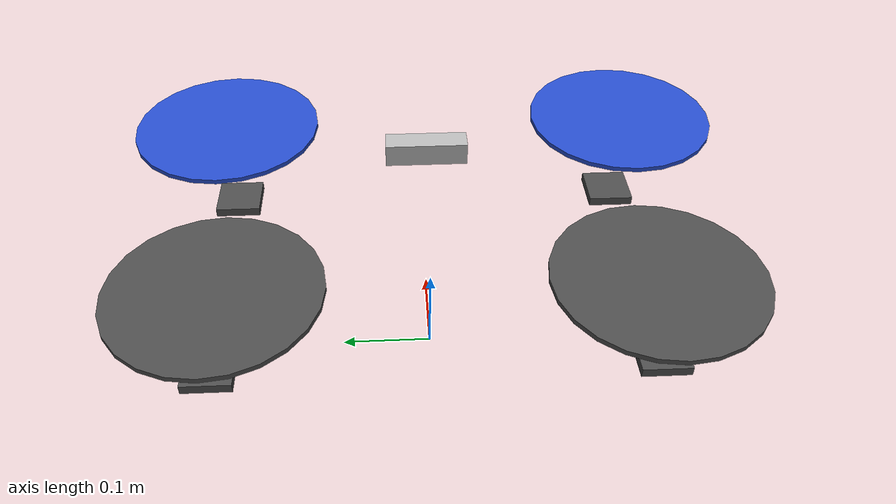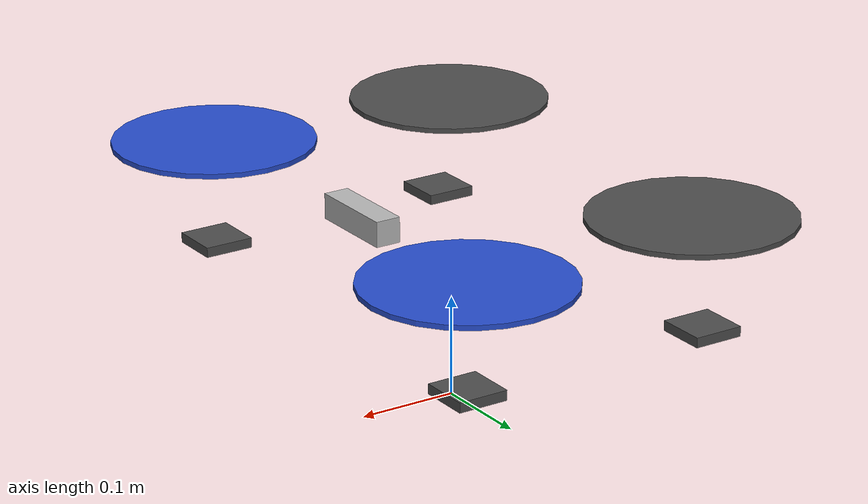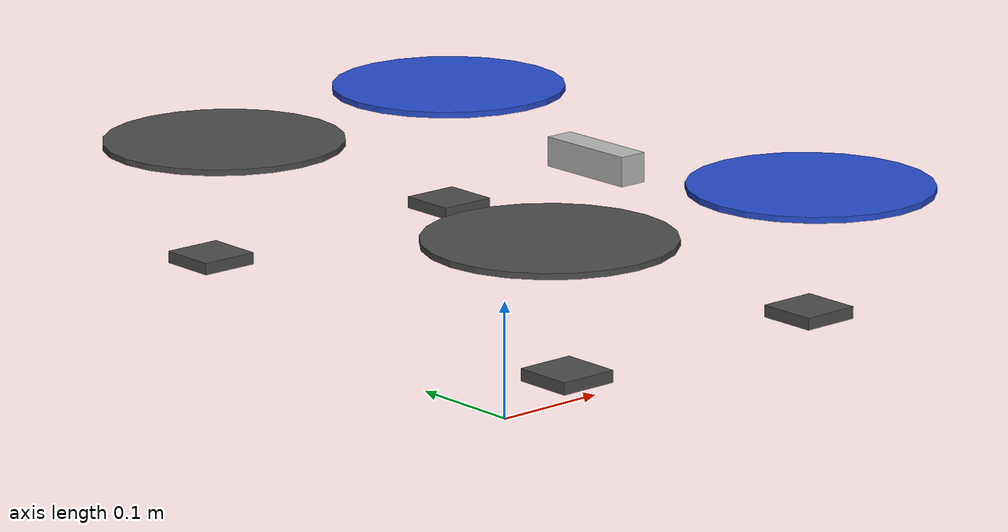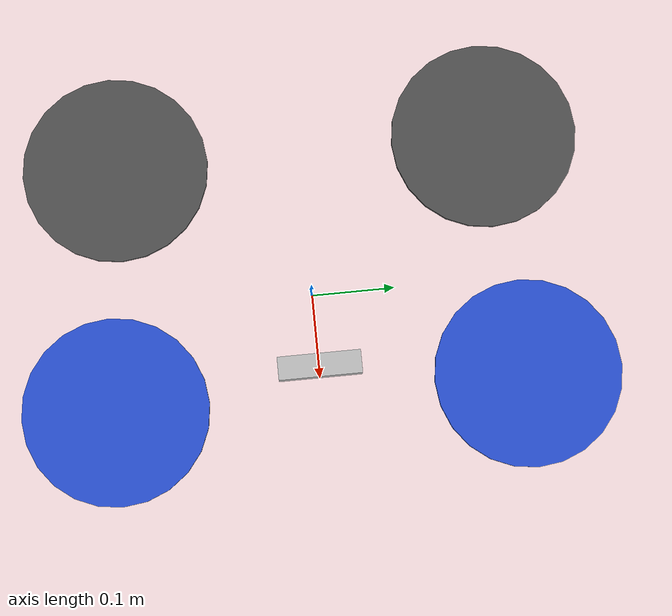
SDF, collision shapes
<?xml version='1.0'?>
<sdf version="1.6">
  <model name="drone_0">
    <include>
      <uri>model://iris_base</uri>
    </include>

    <link name="realsense_cam_link">
      <pose>0.1 0.0 0.19 0 -0 0</pose>
      <inertial>
        <mass>0.01</mass>
        <inertia>
          <ixx>0.00388124</ixx>
          <ixy>0</ixy>
          <ixz>0</ixz>
          <iyy>0.00049894</iyy>
          <iyz>0</iyz>
          <izz>0.00387926</izz>
        </inertia>
      </inertial>
      <collision name='base_link_fixed_joint_lump__camera_link_collision'>
        <pose>0 0 0.0125 0 -0 0</pose>
        <geometry>
          <box>
            <size>0.02505 0.09 0.025</size>
          </box>
        </geometry>
        <surface>
          <contact>
            <ode>
              <kp>1e+13</kp>
              <kd>1</kd>
            </ode>
          </contact>
          <friction>
            <ode>
              <mu2>1</mu2>
              <fdir1>0 0 0</fdir1>
            </ode>
          </friction>
        </surface>
      </collision>
      <visual name='base_link_fixed_joint_lump__camera_link_visual'>
        <pose>0.0149 0 0.0125 1.5708 -0 1.5708</pose>
        <geometry>
          <mesh>
            <scale>1 1 1</scale>
            <uri>model://drone_0_with_realsense/meshes/d435.dae</uri>
          </mesh>
        </geometry>
      </visual>
      <self_collide>0</self_collide>
      <enable_wind>0</enable_wind>
      <kinematic>0</kinematic>
      <gravity>1</gravity>

      <sensor name='cameracolor' type='camera'>
        <camera name='camera'>
          <horizontal_fov>1.21126</horizontal_fov>
          <image>
            <width>640</width>
            <height>480</height>
            <format>RGB_INT8</format>
          </image>
          <clip>
            <near>0.1</near>
            <far>100</far>
          </clip>
          <noise>
            <type>gaussian</type>
            <mean>0</mean>
            <stddev>0.007</stddev>
          </noise>
        </camera>
        <always_on>1</always_on>
        <update_rate>30</update_rate>
        <visualize>1</visualize>
        <pose>0 0.0175 0.0125 0 -0 0</pose>
      </sensor>
      <sensor name='cameraired1' type='camera'>
        <camera name='camera'>
          <horizontal_fov>1.48702</horizontal_fov>
          <image>
            <width>1280</width>
            <height>720</height>
            <format>L_INT8</format>
          </image>
          <clip>
            <near>0.1</near>
            <far>100</far>
          </clip>
          <noise>
            <type>gaussian</type>
            <mean>0</mean>
            <stddev>0.05</stddev>
          </noise>
        </camera>
        <always_on>1</always_on>
        <update_rate>90</update_rate>
        <visualize>0</visualize>
        <pose>0 0.0175 0.0125 0 -0 0</pose>
      </sensor>
      <sensor name='cameraired2' type='camera'>
        <camera name='camera'>
          <horizontal_fov>1.48702</horizontal_fov>
          <image>
            <width>1280</width>
            <height>720</height>
            <format>L_INT8</format>
          </image>
          <clip>
            <near>0.1</near>
            <far>100</far>
          </clip>
          <noise>
            <type>gaussian</type>
            <mean>0</mean>
            <stddev>0.05</stddev>
          </noise>
        </camera>
        <always_on>1</always_on>
        <update_rate>90</update_rate>
        <visualize>0</visualize>
        <pose>0 0.0175 0.0125 0 -0 0</pose>
      </sensor>
      <sensor name='cameradepth' type='depth'>
        <camera name='camera'>
          <horizontal_fov>1.48702</horizontal_fov>
          <image>
            <width>1280</width>
            <height>720</height>
          </image>
          <clip>
            <near>0.1</near>
            <far>100</far>
          </clip>
          <noise>
            <type>gaussian</type>
            <mean>0</mean>
            <stddev>0.1</stddev>
          </noise>
        </camera>
        <always_on>1</always_on>
        <update_rate>90</update_rate>
        <visualize>0</visualize>
        <pose>0 0.0175 0.0125 0 -0 0</pose>
      </sensor>
    </link>

    <joint name="realsense_camera_mount_joint" type="fixed">
      <parent>iris::base_link</parent>
      <child>realsense_cam_link</child>
      <axis>
        <xyz>0 1 0</xyz>
        <limit>
          <upper>0</upper>
          <lower>0</lower>
        </limit>
      </axis>
    </joint>

    <plugin name="rotor_0_blade_1" filename="libLiftDragPlugin.so">
      <a0>0.3</a0>
      <alpha_stall>1.4</alpha_stall>
      <cla>4.2500</cla>
      <cda>0.10</cda>
      <cma>0.00</cma>
      <cla_stall>-0.025</cla_stall>
      <cda_stall>0.0</cda_stall>
      <cma_stall>0.0</cma_stall>
      <area>0.002</area>
      <air_density>1.2041</air_density>
      <cp>0.084 0 0</cp>
      <forward>0 1 0</forward>
      <upward>0 0 1</upward>
      <link_name>iris::rotor_0</link_name>
    </plugin>
    <plugin name="rotor_0_blade_2" filename="libLiftDragPlugin.so">
      <a0>0.3</a0>
      <alpha_stall>1.4</alpha_stall>
      <cla>4.2500</cla>
      <cda>0.10</cda>
      <cma>0.00</cma>
      <cla_stall>-0.025</cla_stall>
      <cda_stall>0.0</cda_stall>
      <cma_stall>0.0</cma_stall>
      <area>0.002</area>
      <air_density>1.2041</air_density>
      <cp>-0.084 0 0</cp>
      <forward>0 -1 0</forward>
      <upward>0 0 1</upward>
      <link_name>iris::rotor_0</link_name>
    </plugin>

    <plugin name="rotor_1_blade_1" filename="libLiftDragPlugin.so">
      <a0>0.3</a0>
      <alpha_stall>1.4</alpha_stall>
      <cla>4.2500</cla>
      <cda>0.10</cda>
      <cma>0.00</cma>
      <cla_stall>-0.025</cla_stall>
      <cda_stall>0.0</cda_stall>
      <cma_stall>0.0</cma_stall>
      <area>0.002</area>
      <air_density>1.2041</air_density>
      <cp>0.084 0 0</cp>
      <forward>0 1 0</forward>
      <upward>0 0 1</upward>
      <link_name>iris::rotor_1</link_name>
    </plugin>
    <plugin name="rotor_1_blade_2" filename="libLiftDragPlugin.so">
      <a0>0.3</a0>
      <alpha_stall>1.4</alpha_stall>
      <cla>4.2500</cla>
      <cda>0.10</cda>
      <cma>0.00</cma>
      <cla_stall>-0.025</cla_stall>
      <cda_stall>0.0</cda_stall>
      <cma_stall>0.0</cma_stall>
      <area>0.002</area>
      <air_density>1.2041</air_density>
      <cp>-0.084 0 0</cp>
      <forward>0 -1 0</forward>
      <upward>0 0 1</upward>
      <link_name>iris::rotor_1</link_name>
    </plugin>

    <plugin name="rotor_2_blade_1" filename="libLiftDragPlugin.so">
      <a0>0.3</a0>
      <alpha_stall>1.4</alpha_stall>
      <cla>4.2500</cla>
      <cda>0.10</cda>
      <cma>0.00</cma>
      <cla_stall>-0.025</cla_stall>
      <cda_stall>0.0</cda_stall>
      <cma_stall>0.0</cma_stall>
      <area>0.002</area>
      <air_density>1.2041</air_density>
      <cp>0.084 0 0</cp>
      <forward>0 -1 0</forward>
      <upward>0 0 1</upward>
      <link_name>iris::rotor_2</link_name>
    </plugin>
    <plugin name="rotor_2_blade_2" filename="libLiftDragPlugin.so">
      <a0>0.3</a0>
      <alpha_stall>1.4</alpha_stall>
      <cla>4.2500</cla>
      <cda>0.10</cda>
      <cma>0.00</cma>
      <cla_stall>-0.025</cla_stall>
      <cda_stall>0.0</cda_stall>
      <cma_stall>0.0</cma_stall>
      <area>0.002</area>
      <air_density>1.2041</air_density>
      <cp>-0.084 0 0</cp>
      <forward>0 1 0</forward>
      <upward>0 0 1</upward>
      <link_name>iris::rotor_2</link_name>
    </plugin>

    <plugin name="rotor_3_blade_1" filename="libLiftDragPlugin.so">
      <a0>0.3</a0>
      <alpha_stall>1.4</alpha_stall>
      <cla>4.2500</cla>
      <cda>0.10</cda>
      <cma>0.00</cma>
      <cla_stall>-0.025</cla_stall>
      <cda_stall>0.0</cda_stall>
      <cma_stall>0.0</cma_stall>
      <area>0.002</area>
      <air_density>1.2041</air_density>
      <cp>0.084 0 0</cp>
      <forward>0 -1 0</forward>
      <upward>0 0 1</upward>
      <link_name>iris::rotor_3</link_name>
    </plugin>
    <plugin name="rotor_3_blade_2" filename="libLiftDragPlugin.so">
      <a0>0.3</a0>
      <alpha_stall>1.4</alpha_stall>
      <cla>4.2500</cla>
      <cda>0.10</cda>
      <cma>0.00</cma>
      <cla_stall>-0.025</cla_stall>
      <cda_stall>0.0</cda_stall>
      <cma_stall>0.0</cma_stall>
      <area>0.002</area>
      <air_density>1.2041</air_density>
      <cp>-0.084 0 0</cp>
      <forward>0 1 0</forward>
      <upward>0 0 1</upward>
      <link_name>iris::rotor_3</link_name>
    </plugin>
    <plugin name="arducopter_plugin" filename="libArduPilotPlugin.so">
      <fdm_addr>127.0.0.1</fdm_addr>
      <fdm_port_in>9002</fdm_port_in>
      <fdm_port_out>9003</fdm_port_out>
      <!--
          Require by APM :
          Only change model and gazebo from XYZ to XY-Z coordinates
      -->
      <modelXYZToAirplaneXForwardZDown>0 0 0 3.141593 0 0</modelXYZToAirplaneXForwardZDown>
      <gazeboXYZToNED>0 0 0 3.141593 0 0</gazeboXYZToNED>
      <imuName>iris::iris/imu_link::imu_sensor</imuName>
      <connectionTimeoutMaxCount>5</connectionTimeoutMaxCount>
      <control channel="0">
      <!--
          incoming control command [0, 1]
          so offset it by 0 to get [0, 1]
          and divide max target by 1.
          offset = 0
          multiplier = 838 max rpm / 1 = 838
        -->
        <type>VELOCITY</type>
        <offset>0</offset>
        <p_gain>0.20</p_gain>
        <i_gain>0</i_gain>
        <d_gain>0</d_gain>
        <i_max>0</i_max>
        <i_min>0</i_min>
        <cmd_max>2.5</cmd_max>
        <cmd_min>-2.5</cmd_min>
        <jointName>iris::rotor_0_joint</jointName>
        <multiplier>838</multiplier>
        <controlVelocitySlowdownSim>1</controlVelocitySlowdownSim>
      </control>
      <control channel="1">
        <type>VELOCITY</type>
        <offset>0</offset>
        <p_gain>0.20</p_gain>
        <i_gain>0</i_gain>
        <d_gain>0</d_gain>
        <i_max>0</i_max>
        <i_min>0</i_min>
        <cmd_max>2.5</cmd_max>
        <cmd_min>-2.5</cmd_min>
        <jointName>iris::rotor_1_joint</jointName>
        <multiplier>838</multiplier>
        <controlVelocitySlowdownSim>1</controlVelocitySlowdownSim>
      </control>
      <control channel="2">
        <type>VELOCITY</type>
        <offset>0</offset>
        <p_gain>0.20</p_gain>
        <i_gain>0</i_gain>
        <d_gain>0</d_gain>
        <i_max>0</i_max>
        <i_min>0</i_min>
        <cmd_max>2.5</cmd_max>
        <cmd_min>-2.5</cmd_min>
        <jointName>iris::rotor_2_joint</jointName>
        <multiplier>-838</multiplier>
        <controlVelocitySlowdownSim>1</controlVelocitySlowdownSim>
      </control>
      <control channel="3">
        <type>VELOCITY</type>
        <offset>0</offset>
        <p_gain>0.20</p_gain>
        <i_gain>0</i_gain>
        <d_gain>0</d_gain>
        <i_max>0</i_max>
        <i_min>0</i_min>
        <cmd_max>2.5</cmd_max>
        <cmd_min>-2.5</cmd_min>
        <jointName>iris::rotor_3_joint</jointName>
        <multiplier>-838</multiplier>
        <controlVelocitySlowdownSim>1</controlVelocitySlowdownSim>
      </control>
    </plugin>

    <frame name='camera_color_optical_joint' attached_to='camera_color_frame'>
      <pose>0 0 0 -1.5708 -0 -1.5708</pose>
    </frame>
    <frame name='camera_color_optical_frame' attached_to='camera_color_optical_joint'/>
    <frame name='camera_color_joint' attached_to='camera_depth_frame'>
      <pose>0 0.015 0 0 -0 0</pose>
    </frame>
    <frame name='camera_color_frame' attached_to='camera_color_joint'/>
    <frame name='camera_depth_optical_joint' attached_to='camera_depth_frame'>
      <pose>0 0 0 -1.5708 -0 -1.5708</pose>
    </frame>
    <frame name='camera_depth_optical_frame' attached_to='camera_depth_optical_joint'/>
    <frame name='camera_left_ir_optical_joint' attached_to='camera_left_ir_frame'>
      <pose>0 0 0 -1.5708 -0 -1.5708</pose>
    </frame>
    <frame name='camera_left_ir_optical_frame' attached_to='camera_left_ir_optical_joint'/>
    <frame name='camera_left_ir_joint' attached_to='camera_depth_frame'>
      <pose>0 0 0 0 -0 0</pose>
    </frame>
    <frame name='camera_left_ir_frame' attached_to='camera_left_ir_joint'/>
    <frame name='camera_right_ir_optical_joint' attached_to='camera_right_ir_frame'>
      <pose>0 0 0 -1.5708 -0 -1.5708</pose>
    </frame>
    <frame name='camera_right_ir_optical_frame' attached_to='camera_right_ir_optical_joint'/>
    <frame name='camera_right_ir_joint' attached_to='camera_depth_frame'>
      <pose>0 -0.05 0 0 -0 0</pose>
    </frame>
    <frame name='camera_right_ir_frame' attached_to='camera_right_ir_joint'/>
    <frame name='camera_depth_joint' attached_to='camera_link'>
      <pose>0 0 0 0 -0 0</pose>
    </frame>
    <frame name='camera_depth_frame' attached_to='camera_depth_joint'/>
    <frame name='camera_link_joint' attached_to='camera_bottom_screw_frame'>
      <pose>0 0.0175 0.0125 0 -0 0</pose>
    </frame>
    <frame name='camera_link' attached_to='camera_link_joint'/>
    <frame name='camera_joint' attached_to='base_link'>
      <pose>0 0 0 0 -0 0</pose>
    </frame>
    <frame name='camera_bottom_screw_frame' attached_to='camera_joint'/>

    <plugin name='drone_0' filename='librealsense_gazebo_plugin.so'>
      <prefix>camera</prefix>
      <depthUpdateRate>30.0</depthUpdateRate>
      <colorUpdateRate>30.0</colorUpdateRate>
      <infraredUpdateRate>30.0</infraredUpdateRate>
      <depthTopicName>depth/image_raw</depthTopicName>
      <depthCameraInfoTopicName>depth/camera_info</depthCameraInfoTopicName>
      <colorTopicName>color/image_raw</colorTopicName>
      <colorCameraInfoTopicName>color/camera_info</colorCameraInfoTopicName>
      <infrared1TopicName>infra1/image_raw</infrared1TopicName>
      <infrared1CameraInfoTopicName>infra1/camera_info</infrared1CameraInfoTopicName>
      <infrared2TopicName>infra2/image_raw</infrared2TopicName>
      <infrared2CameraInfoTopicName>infra2/camera_info</infrared2CameraInfoTopicName>
      <colorOpticalframeName>camera_color_optical_frame</colorOpticalframeName>
      <depthOpticalframeName>camera_depth_optical_frame</depthOpticalframeName>
      <infrared1OpticalframeName>camera_left_ir_optical_frame</infrared1OpticalframeName>
      <infrared2OpticalframeName>camera_right_ir_optical_frame</infrared2OpticalframeName>
      <rangeMinDepth>0.2</rangeMinDepth>
      <rangeMaxDepth>10.0</rangeMaxDepth>
      <pointCloud>1</pointCloud>
      <pointCloudTopicName>dummy_pointcloud</pointCloudTopicName>
      <pointCloudCutoff>0.25</pointCloudCutoff>
      <pointCloudCutoffMax>9.0</pointCloudCutoffMax>
    </plugin>
  </model>
</sdf>

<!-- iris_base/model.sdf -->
<sdf version='1.6'>
  <model name='iris'>
    <pose>0 0 0.194923 0 0 0</pose>
    <link name='base_link'>
      <velocity_decay>
        <linear>0.0</linear>
        <angular>0.0</angular>
      </velocity_decay>
      <inertial>
        <pose>0 0 0 0 0 0</pose>
        <mass>1.5</mass>
        <inertia>
          <ixx>0.008</ixx>
          <ixy>0</ixy>
          <ixz>0</ixz>
          <iyy>0.015</iyy>
          <iyz>0</iyz>
          <izz>0.017</izz>
        </inertia>
      </inertial>

      <collision name='base_link_collision_fl'>
        <pose>0.13 0.22 -0.08 0 0 0</pose>
        <geometry>
          <box>
            <size>0.05 0.05 0.01</size>
          </box>
        </geometry>
        <surface>
          <contact>
            <ode>
              <max_vel>100.0</max_vel>
              <min_depth>0.001</min_depth>
            </ode>
          </contact>
          <friction>
            <ode>
              <mu>1.0</mu>
              <mu2>1.0</mu2>
            </ode>
          </friction>
        </surface>
      </collision>
      <collision name='base_link_collision_fr'>
        <pose>0.13 -0.22 -0.08 0 0 0</pose>
        <geometry>
          <box>
            <size>0.05 0.05 0.01</size>
          </box>
        </geometry>
        <surface>
          <contact>
            <ode>
              <max_vel>100.0</max_vel>
              <min_depth>0.001</min_depth>
            </ode>
          </contact>
          <friction>
            <ode>
              <mu>1.0</mu>
              <mu2>1.0</mu2>
            </ode>
          </friction>
        </surface>
      </collision>
      <collision name='base_link_collision_br'>
        <pose>-0.13 -0.22 -0.08 0 0 0</pose>
        <geometry>
          <box>
            <size>0.05 0.05 0.01</size>
          </box>
        </geometry>
        <surface>
          <contact>
            <ode>
              <max_vel>100.0</max_vel>
              <min_depth>0.001</min_depth>
            </ode>
          </contact>
          <friction>
            <ode>
              <mu>1.0</mu>
              <mu2>1.0</mu2>
            </ode>
          </friction>
        </surface>
      </collision>
      <collision name='base_link_collision_bl'>
        <pose>-0.13 0.22 -0.08 0 0 0</pose>
        <geometry>
          <box>
            <size>0.05 0.05 0.01</size>
          </box>
        </geometry>
        <surface>
          <contact>
            <ode>
              <max_vel>100.0</max_vel>
              <min_depth>0.001</min_depth>
            </ode>
          </contact>
          <friction>
            <ode>
              <mu>1.0</mu>
              <mu2>1.0</mu2>
            </ode>
          </friction>
        </surface>
      </collision>

      <visual name='base_link_visual'>
        <geometry>
          <mesh>
            <uri>model://iris_base/meshes/iris.dae</uri>
          </mesh>
        </geometry>
        <material>
          <script>
            <name>Gazebo/DarkGrey</name>
          </script>
        </material>
      </visual>

    </link>
    <link name='iris/ground_truth/odometry_sensorgt_link'>
      <pose>0 0 0 0 -0 0</pose>
      <inertial>
        <pose>0 0 0 0 -0 0</pose>
        <mass>0.15</mass>
        <inertia>
          <ixx>0.0001</ixx>
          <ixy>0</ixy>
          <ixz>0</ixz>
          <iyy>0.0002</iyy>
          <iyz>0</iyz>
          <izz>0.0002</izz>
        </inertia>
      </inertial>
    </link>
    <joint name='iris/ground_truth/odometry_sensorgt_joint' type='revolute'>
      <child>iris/ground_truth/odometry_sensorgt_link</child>
      <parent>base_link</parent>
      <axis>
        <xyz>0 0 1</xyz>
        <limit>
          <lower>0</lower>
          <upper>0</upper>
          <effort>0</effort>
          <velocity>0</velocity>
        </limit>
        <dynamics>
          <damping>1.0</damping>
        </dynamics>
        <use_parent_model_frame>1</use_parent_model_frame>
      </axis>
      <physics>
        <ode>
          <implicit_spring_damper>1</implicit_spring_damper>
        </ode>
      </physics>
    </joint>
    <link name='iris/imu_link'>
      <inertial>
        <pose>0 0 0 0 0 0</pose>
        <mass>0.15</mass>
        <inertia>
          <ixx>0.00001</ixx>
          <ixy>0</ixy>
          <ixz>0</ixz>
          <iyy>0.00002</iyy>
          <iyz>0</iyz>
          <izz>0.00002</izz>
        </inertia>
      </inertial>
      <sensor name="imu_sensor" type="imu">
        <pose>0 0 0 3.141593 0 0</pose>
        <always_on>1</always_on>
        <update_rate>1000.0</update_rate>
      </sensor>
    </link>
    <joint name='iris/imu_joint' type='revolute'>
      <child>iris/imu_link</child>
      <parent>base_link</parent>
      <axis>
        <xyz>0 0 1</xyz>
        <limit>
          <lower>0</lower>
          <upper>0</upper>
          <effort>0</effort>
          <velocity>0</velocity>
        </limit>
        <dynamics>
          <damping>1.0</damping>
        </dynamics>
        <use_parent_model_frame>1</use_parent_model_frame>
      </axis>
      <physics>
        <ode>
          <implicit_spring_damper>1</implicit_spring_damper>
        </ode>
      </physics>
    </joint>
    <link name='rotor_0'>
      <pose>0.13 -0.22 0.023 0 -0 0</pose>
      <inertial>
        <pose>0 0 0 0 -0 0</pose>
        <mass>0.025</mass>
        <inertia>
          <ixx>9.75e-06</ixx>
          <ixy>0</ixy>
          <ixz>0</ixz>
          <iyy>0.000166704</iyy>
          <iyz>0</iyz>
          <izz>0.000167604</izz>
        </inertia>
      </inertial>
      <collision name='rotor_0_collision'>
        <pose>0 0 0 0 -0 0</pose>
        <geometry>
          <cylinder>
            <length>0.005</length>
            <radius>0.1</radius>
          </cylinder>
        </geometry>
        <surface>
          <contact>
            <ode/>
          </contact>
          <friction>
            <ode/>
          </friction>
        </surface>
      </collision>
      <visual name='rotor_0_visual'>
        <pose>0 0 0 0 -0 0</pose>
        <geometry>
          <mesh>
            <scale>1 1 1</scale>
            <uri>model://iris_base/meshes/iris_prop_ccw.dae</uri>
          </mesh>
        </geometry>
        <material>
          <script>
            <name>Gazebo/Blue</name>
            <uri>__default__</uri>
          </script>
        </material>
      </visual>
      <gravity>1</gravity>
      <velocity_decay/>
      <self_collide>0</self_collide>
    </link>
    <joint name='rotor_0_joint' type='revolute'>
      <child>rotor_0</child>
      <parent>base_link</parent>
      <axis>
        <xyz>0 0 1</xyz>
        <limit>
          <lower>-1e+16</lower>
          <upper>1e+16</upper>
        </limit>
        <dynamics>
          <damping>0.004</damping>
        </dynamics>
        <use_parent_model_frame>1</use_parent_model_frame>
      </axis>
      <physics>
        <ode>
          <implicit_spring_damper>1</implicit_spring_damper>
        </ode>
      </physics>
    </joint>
    <link name='rotor_1'>
      <pose>-0.13 0.2 0.023 0 -0 0</pose>
      <inertial>
        <pose>0 0 0 0 -0 0</pose>
        <mass>0.025</mass>
        <inertia>
          <ixx>9.75e-06</ixx>
          <ixy>0</ixy>
          <ixz>0</ixz>
          <iyy>0.000166704</iyy>
          <iyz>0</iyz>
          <izz>0.000167604</izz>
        </inertia>
      </inertial>
      <collision name='rotor_1_collision'>
        <pose>0 0 0 0 -0 0</pose>
        <geometry>
          <cylinder>
            <length>0.005</length>
            <radius>0.1</radius>
          </cylinder>
        </geometry>
        <surface>
          <contact>
            <ode/>
          </contact>
          <friction>
            <ode/>
          </friction>
        </surface>
      </collision>
      <visual name='rotor_1_visual'>
        <pose>0 0 0 0 -0 0</pose>
        <geometry>
          <mesh>
            <scale>1 1 1</scale>
            <uri>model://iris_base/meshes/iris_prop_ccw.dae</uri>
          </mesh>
        </geometry>
        <material>
          <script>
            <name>Gazebo/DarkGrey</name>
            <uri>__default__</uri>
          </script>
        </material>
      </visual>
      <gravity>1</gravity>
      <velocity_decay/>
      <self_collide>0</self_collide>
    </link>
    <joint name='rotor_1_joint' type='revolute'>
      <child>rotor_1</child>
      <parent>base_link</parent>
      <axis>
        <xyz>0 0 1</xyz>
        <limit>
          <lower>-1e+16</lower>
          <upper>1e+16</upper>
        </limit>
        <dynamics>
          <damping>0.004</damping>
        </dynamics>
        <use_parent_model_frame>1</use_parent_model_frame>
      </axis>
      <physics>
        <ode>
          <implicit_spring_damper>1</implicit_spring_damper>
        </ode>
      </physics>
    </joint>
    <link name='rotor_2'>
      <pose>0.13 0.22 0.023 0 -0 0</pose>
      <inertial>
        <pose>0 0 0 0 -0 0</pose>
        <mass>0.025</mass>
        <inertia>
          <ixx>9.75e-06</ixx>
          <ixy>0</ixy>
          <ixz>0</ixz>
          <iyy>0.000166704</iyy>
          <iyz>0</iyz>
          <izz>0.000167604</izz>
        </inertia>
      </inertial>
      <collision name='rotor_2_collision'>
        <pose>0 0 0 0 -0 0</pose>
        <geometry>
          <cylinder>
            <length>0.005</length>
            <radius>0.1</radius>
          </cylinder>
        </geometry>
        <surface>
          <contact>
            <ode/>
          </contact>
          <friction>
            <ode/>
          </friction>
        </surface>
      </collision>
      <visual name='rotor_2_visual'>
        <pose>0 0 0 0 -0 0</pose>
        <geometry>
          <mesh>
            <scale>1 1 1</scale>
            <uri>model://iris_base/meshes/iris_prop_cw.dae</uri>
          </mesh>
        </geometry>
        <material>
          <script>
            <name>Gazebo/Blue</name>
            <uri>__default__</uri>
          </script>
        </material>
      </visual>
      <gravity>1</gravity>
      <velocity_decay/>
      <self_collide>0</self_collide>
    </link>
    <joint name='rotor_2_joint' type='revolute'>
      <child>rotor_2</child>
      <parent>base_link</parent>
      <axis>
        <xyz>0 0 1</xyz>
        <limit>
          <lower>-1e+16</lower>
          <upper>1e+16</upper>
        </limit>
        <dynamics>
          <damping>0.004</damping>
        </dynamics>
        <use_parent_model_frame>1</use_parent_model_frame>
      </axis>
      <physics>
        <ode>
          <implicit_spring_damper>1</implicit_spring_damper>
        </ode>
      </physics>
    </joint>
    <link name='rotor_3'>
      <pose>-0.13 -0.2 0.023 0 -0 0</pose>
      <inertial>
        <pose>0 0 0 0 -0 0</pose>
        <mass>0.025</mass>
        <inertia>
          <ixx>9.75e-06</ixx>
          <ixy>0</ixy>
          <ixz>0</ixz>
          <iyy>0.000166704</iyy>
          <iyz>0</iyz>
          <izz>0.000167604</izz>
        </inertia>
      </inertial>
      <collision name='rotor_3_collision'>
        <pose>0 0 0 0 -0 0</pose>
        <geometry>
          <cylinder>
            <length>0.005</length>
            <radius>0.1</radius>
          </cylinder>
        </geometry>
        <surface>
          <contact>
            <ode/>
          </contact>
          <friction>
            <ode/>
          </friction>
        </surface>
      </collision>
      <visual name='rotor_3_visual'>
        <pose>0 0 0 0 -0 0</pose>
        <geometry>
          <mesh>
            <scale>1 1 1</scale>
            <uri>model://iris_base/meshes/iris_prop_cw.dae</uri>
          </mesh>
        </geometry>
        <material>
          <script>
            <name>Gazebo/DarkGrey</name>
            <uri>__default__</uri>
          </script>
        </material>
      </visual>
      <gravity>1</gravity>
      <velocity_decay/>
      <self_collide>0</self_collide>
    </link>
    <joint name='rotor_3_joint' type='revolute'>
      <child>rotor_3</child>
      <parent>base_link</parent>
      <axis>
        <xyz>0 0 1</xyz>
        <limit>
          <lower>-1e+16</lower>
          <upper>1e+16</upper>
        </limit>
        <dynamics>
          <damping>0.004</damping>
        </dynamics>
        <use_parent_model_frame>1</use_parent_model_frame>
      </axis>
      <physics>
        <ode>
          <implicit_spring_damper>1</implicit_spring_damper>
        </ode>
      </physics>
    </joint>
    <static>0</static>
  </model>
</sdf>
